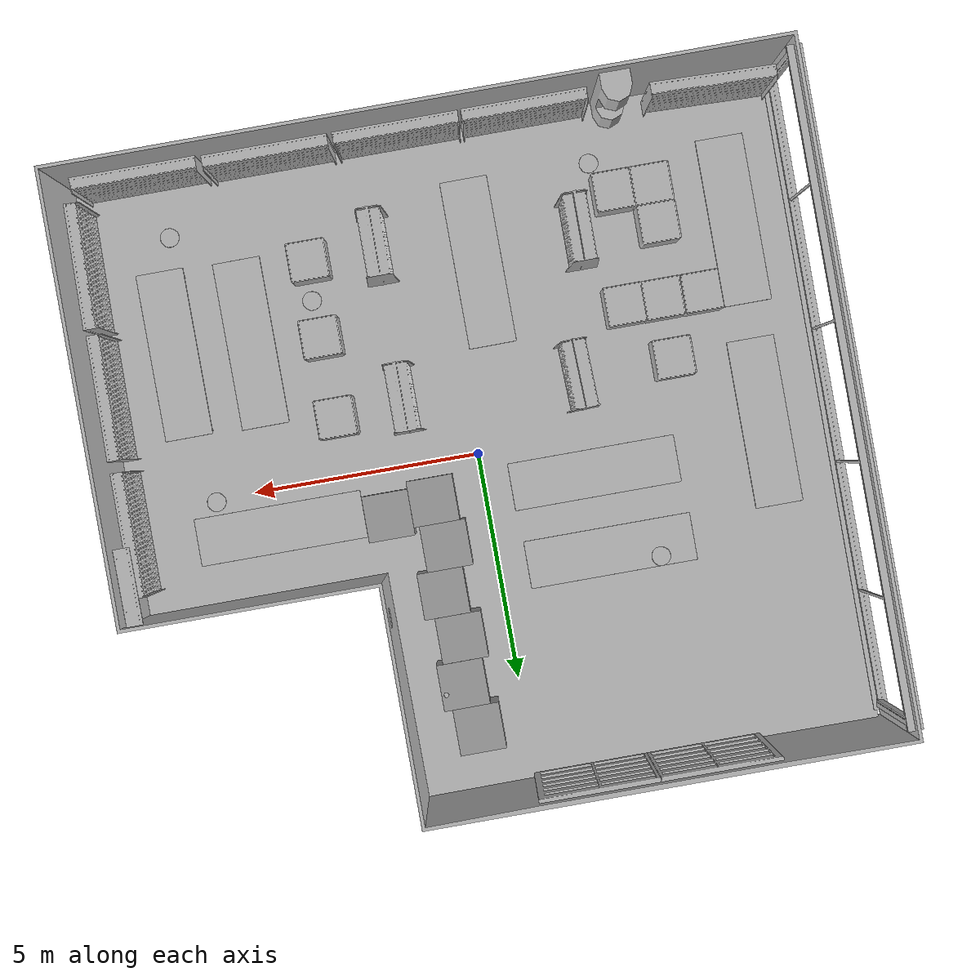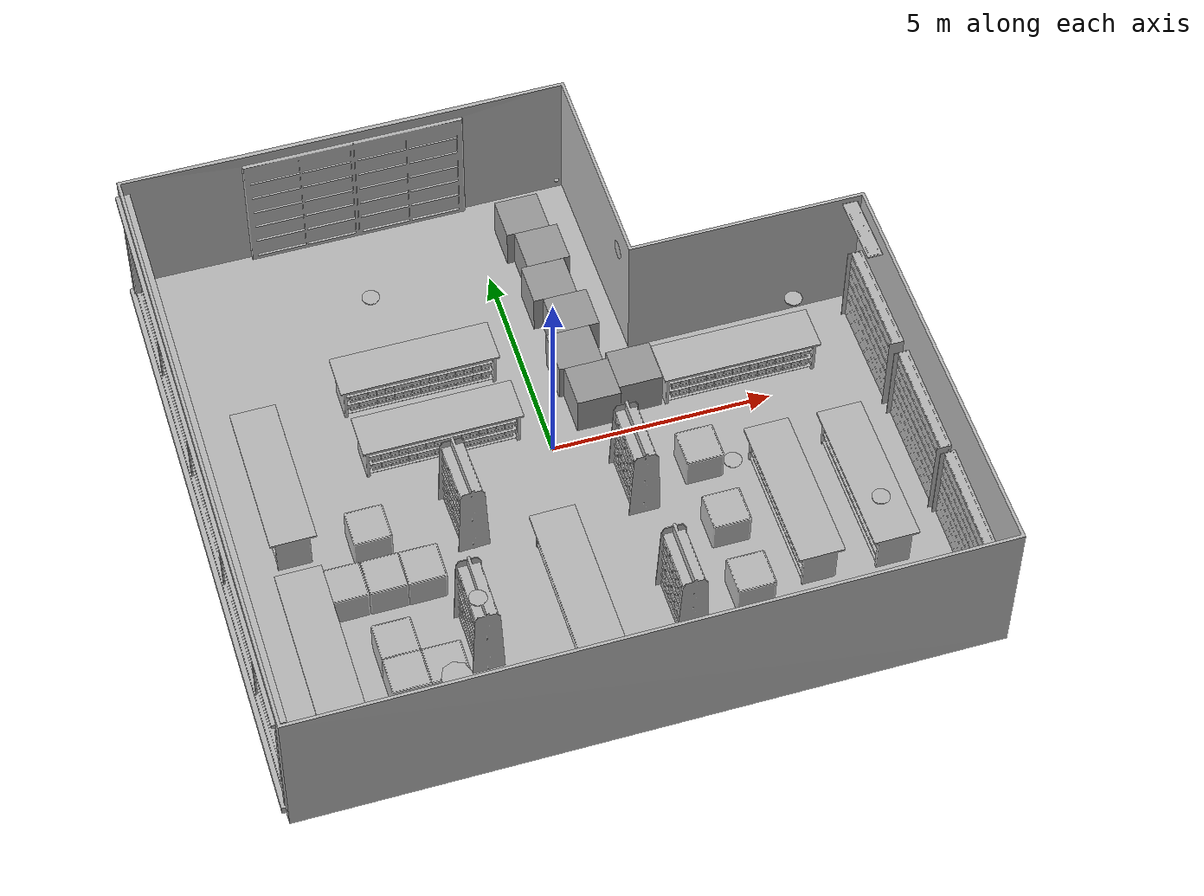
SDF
<sdf version="1.7">
 <world name="default">
  <gravity>0 0 -9.8</gravity>
  <magnetic_field>6e-06 2.3e-05 -4.2e-05</magnetic_field>
  <atmosphere type="adiabatic"/>
  <physics name="default_physics" default="0" type="ode">
   <max_step_size>0.001</max_step_size>
   <real_time_factor>1</real_time_factor>
   <real_time_update_rate>1000</real_time_update_rate>
  </physics>
  <scene>
   <ambient>0.4 0.4 0.4 1</ambient>
   <background>0.7 0.7 0.7 1</background>
   <shadows>1</shadows>
   <grid>0</grid>
   <origin_visual>0</origin_visual>
  </scene>
  <spherical_coordinates>
   <surface_model>EARTH_WGS84</surface_model>
   <latitude_deg>0</latitude_deg>
   <longitude_deg>0</longitude_deg>
   <elevation>0</elevation>
   <heading_deg>0</heading_deg>
  </spherical_coordinates>
  <model name="AirConditionerC_01_001">
   <link name="aws_robomaker_retail_AirConditionerC_01::link">
    <inertial><mass>50</mass></inertial>
    <collision name="collision">
     <geometry>
      <mesh>
       <uri>file://models/aws_robomaker_retail_AirConditionerC_01/meshes/aws_AirConditionerC_01_collision.DAE</uri>
       <scale>1 1 1</scale>
      </mesh>
     </geometry>
    </collision>
    <visual name="visual">
     <geometry>
      <mesh>
       <uri>file://models/aws_robomaker_retail_AirConditionerC_01/meshes/aws_AirConditionerC_01_visual.DAE</uri>
      </mesh>
     </geometry>
     <meta><layer>3</layer></meta>
    </visual>
   </link>
   <static>1</static>
   <pose>7.4582 1.42245 3.29094 0 0 -1.56422</pose>
  </model>
  <model name="BookshelfA_01_001">
   <link name="aws_robomaker_retail_BookshelfA_01::link">
    <inertial>
     <mass>50</mass>
     <inertia><ixx>27.7341</ixx><ixy>0</ixy><ixz>0</ixz><iyy>20.9361</iyy><iyz>0</iyz><izz>11.3596</izz></inertia>
    </inertial>
    <collision name="collision">
     <geometry>
      <mesh>
       <uri>file://models/aws_robomaker_retail_BookshelfA_01/meshes/aws_BookshelfA_01_collision.DAE</uri>
       <scale>1 1 1</scale>
      </mesh>
     </geometry>
    </collision>
    <visual name="visual">
     <geometry>
      <mesh><uri>file://models/aws_robomaker_retail_BookshelfA_01/meshes/aws_BookshelfA_01_visual.DAE</uri></mesh>
     </geometry>
     <meta><layer>1</layer></meta>
    </visual>
   </link>
   <static>1</static>
   <pose>1.40515 -1.44974 0.03755 0.00349 -3e-06 0.000696</pose>
  </model>
  <model name="BookshelfA_01_002">
   <link name="aws_robomaker_retail_BookshelfA_01::link">
    <inertial>
     <mass>50</mass>
     <inertia><ixx>27.7341</ixx><ixy>0</ixy><ixz>0</ixz><iyy>20.9361</iyy><iyz>0</iyz><izz>11.3596</izz></inertia>
    </inertial>
    <collision name="collision">
     <geometry>
      <mesh>
       <uri>file://models/aws_robomaker_retail_BookshelfA_01/meshes/aws_BookshelfA_01_collision.DAE</uri>
       <scale>1 1 1</scale>
      </mesh>
     </geometry>
    </collision>
    <visual name="visual">
     <geometry>
      <mesh><uri>file://models/aws_robomaker_retail_BookshelfA_01/meshes/aws_BookshelfA_01_visual.DAE</uri></mesh>
     </geometry>
     <meta><layer>1</layer></meta>
    </visual>
   </link>
   <static>1</static>
   <pose>1.40515 -4.76165 0.003411 0 -0 0</pose>
  </model>
  <model name="BookshelfA_01_003">
   <link name="aws_robomaker_retail_BookshelfA_01::link">
    <inertial>
     <mass>50</mass>
     <inertia><ixx>27.7341</ixx><ixy>0</ixy><ixz>0</ixz><iyy>20.9361</iyy><iyz>0</iyz><izz>11.3596</izz></inertia>
    </inertial>
    <collision name="collision">
     <geometry>
      <mesh>
       <uri>file://models/aws_robomaker_retail_BookshelfA_01/meshes/aws_BookshelfA_01_collision.DAE</uri>
       <scale>1 1 1</scale>
      </mesh>
     </geometry>
    </collision>
    <visual name="visual">
     <geometry>
      <mesh><uri>file://models/aws_robomaker_retail_BookshelfA_01/meshes/aws_BookshelfA_01_visual.DAE</uri></mesh>
     </geometry>
     <meta><layer>1</layer></meta>
    </visual>
   </link>
   <static>1</static>
   <pose>-2.39042 -1.27891 0.006337 0.001313 -0.001987 0.031824</pose>
  </model>
  <model name="BookshelfA_01_004">
   <link name="aws_robomaker_retail_BookshelfA_01::link">
    <inertial>
     <mass>50</mass>
     <inertia><ixx>27.7341</ixx><ixy>0</ixy><ixz>0</ixz><iyy>20.9361</iyy><iyz>0</iyz><izz>11.3596</izz></inertia>
    </inertial>
    <collision name="collision">
     <geometry>
      <mesh>
       <uri>file://models/aws_robomaker_retail_BookshelfA_01/meshes/aws_BookshelfA_01_collision.DAE</uri>
       <scale>1 1 1</scale>
      </mesh>
     </geometry>
    </collision>
    <visual name="visual">
     <geometry>
      <mesh><uri>file://models/aws_robomaker_retail_BookshelfA_01/meshes/aws_BookshelfA_01_visual.DAE</uri></mesh>
     </geometry>
     <meta><layer>1</layer></meta>
    </visual>
   </link>
   <static>1</static>
   <pose>-2.92417 -4.3226 0.003411 0 -0 0</pose>
  </model>
  <model name="BookshelfB_01_001">
   <link name="aws_robomaker_retail_BookshelfB_01::link">
    <inertial>
     <mass>50</mass>
     <inertia><ixx>19.8742</ixx><ixy>0</ixy><ixz>0</ixz><iyy>49.1263</iyy><iyz>0</iyz><izz>30.2231</izz></inertia>
    </inertial>
    <collision name="collision">
     <geometry>
      <mesh>
       <uri>file://models/aws_robomaker_retail_BookshelfB_01/meshes/aws_BookshelfB_01_collision.DAE</uri>
       <scale>1 1 1</scale>
      </mesh>
     </geometry>
    </collision>
    <visual name="visual">
     <geometry>
      <mesh><uri>file://models/aws_robomaker_retail_BookshelfB_01/meshes/aws_BookshelfB_01_visual.DAE</uri></mesh>
     </geometry>
     <meta><layer>1</layer></meta>
    </visual>
   </link>
   <static>1</static>
   <pose>-6.18968 -6.78565 -0.008942 0.003533 0.000121 -0.032073</pose>
  </model>
  <model name="BookshelfB_01_002">
   <link name="aws_robomaker_retail_BookshelfB_01::link">
    <inertial>
     <mass>50</mass>
     <inertia><ixx>19.8742</ixx><ixy>0</ixy><ixz>0</ixz><iyy>49.1263</iyy><iyz>0</iyz><izz>30.2231</izz></inertia>
    </inertial>
    <collision name="collision">
     <geometry>
      <mesh>
       <uri>file://models/aws_robomaker_retail_BookshelfB_01/meshes/aws_BookshelfB_01_collision.DAE</uri>
       <scale>1 1 1</scale>
      </mesh>
     </geometry>
    </collision>
    <visual name="visual">
     <geometry>
      <mesh><uri>file://models/aws_robomaker_retail_BookshelfB_01/meshes/aws_BookshelfB_01_visual.DAE</uri></mesh>
     </geometry>
     <meta><layer>1</layer></meta>
    </visual>
   </link>
   <static>1</static>
   <pose>-2.20941 -6.97146 0.017074 -0.000128 -0.000252 0.000364</pose>
  </model>
  <model name="BookshelfB_01_003">
   <link name="aws_robomaker_retail_BookshelfB_01::link">
    <inertial>
     <mass>50</mass>
     <inertia><ixx>19.8742</ixx><ixy>0</ixy><ixz>0</ixz><iyy>49.1263</iyy><iyz>0</iyz><izz>30.2231</izz></inertia>
    </inertial>
    <collision name="collision">
     <geometry>
      <mesh>
       <uri>file://models/aws_robomaker_retail_BookshelfB_01/meshes/aws_BookshelfB_01_collision.DAE</uri>
       <scale>1 1 1</scale>
      </mesh>
     </geometry>
    </collision>
    <visual name="visual">
     <geometry>
      <mesh><uri>file://models/aws_robomaker_retail_BookshelfB_01/meshes/aws_BookshelfB_01_visual.DAE</uri></mesh>
     </geometry>
     <meta><layer>1</layer></meta>
    </visual>
   </link>
   <static>1</static>
   <pose>0.522246 -6.9715 0.017947 -0.003292 0 0</pose>
  </model>
  <model name="BookshelfB_01_004">
   <link name="aws_robomaker_retail_BookshelfB_01::link">
    <inertial>
     <mass>50</mass>
     <inertia><ixx>19.8742</ixx><ixy>0</ixy><ixz>0</ixz><iyy>49.1263</iyy><iyz>0</iyz><izz>30.2231</izz></inertia>
    </inertial>
    <collision name="collision">
     <geometry>
      <mesh>
       <uri>file://models/aws_robomaker_retail_BookshelfB_01/meshes/aws_BookshelfB_01_collision.DAE</uri>
       <scale>1 1 1</scale>
      </mesh>
     </geometry>
    </collision>
    <visual name="visual">
     <geometry>
      <mesh><uri>file://models/aws_robomaker_retail_BookshelfB_01/meshes/aws_BookshelfB_01_visual.DAE</uri></mesh>
     </geometry>
     <meta><layer>1</layer></meta>
    </visual>
   </link>
   <static>1</static>
   <pose>3.29339 -6.96366 0.017383 8e-06 -2e-06 -0</pose>
  </model>
  <model name="BookshelfB_01_005">
   <link name="aws_robomaker_retail_BookshelfB_01::link">
    <inertial>
     <mass>50</mass>
     <inertia><ixx>19.8742</ixx><ixy>0</ixy><ixz>0</ixz><iyy>49.1263</iyy><iyz>0</iyz><izz>30.2231</izz></inertia>
    </inertial>
    <collision name="collision">
     <geometry>
      <mesh>
       <uri>file://models/aws_robomaker_retail_BookshelfB_01/meshes/aws_BookshelfB_01_collision.DAE</uri>
       <scale>1 1 1</scale>
      </mesh>
     </geometry>
    </collision>
    <visual name="visual">
     <geometry>
      <mesh><uri>file://models/aws_robomaker_retail_BookshelfB_01/meshes/aws_BookshelfB_01_visual.DAE</uri></mesh>
     </geometry>
     <meta><layer>1</layer></meta>
    </visual>
   </link>
   <static>1</static>
   <pose>6.08038 -6.98766 0.017409 0.000174 4e-06 0</pose>
  </model>
  <model name="BookshelfB_01_006">
   <link name="aws_robomaker_retail_BookshelfB_01::link">
    <inertial>
     <mass>50</mass>
     <inertia><ixx>19.8742</ixx><ixy>0</ixy><ixz>0</ixz><iyy>49.1263</iyy><iyz>0</iyz><izz>30.2231</izz></inertia>
    </inertial>
    <collision name="collision">
     <geometry>
      <mesh>
       <uri>file://models/aws_robomaker_retail_BookshelfB_01/meshes/aws_BookshelfB_01_collision.DAE</uri>
       <scale>1 1 1</scale>
      </mesh>
     </geometry>
    </collision>
    <visual name="visual">
     <geometry>
      <mesh><uri>file://models/aws_robomaker_retail_BookshelfB_01/meshes/aws_BookshelfB_01_visual.DAE</uri></mesh>
     </geometry>
     <meta><layer>1</layer></meta>
    </visual>
   </link>
   <static>1</static>
   <pose>7.47833 -5.2983 0.017443 -0.001974 -0.000211 1.55406</pose>
  </model>
  <model name="BookshelfB_01_007">
   <link name="aws_robomaker_retail_BookshelfB_01::link">
    <inertial>
     <mass>50</mass>
     <inertia><ixx>19.8742</ixx><ixy>0</ixy><ixz>0</ixz><iyy>49.1263</iyy><iyz>0</iyz><izz>30.2231</izz></inertia>
    </inertial>
    <collision name="collision">
     <geometry>
      <mesh>
       <uri>file://models/aws_robomaker_retail_BookshelfB_01/meshes/aws_BookshelfB_01_collision.DAE</uri>
       <scale>1 1 1</scale>
      </mesh>
     </geometry>
    </collision>
    <visual name="visual">
     <geometry>
      <mesh><uri>file://models/aws_robomaker_retail_BookshelfB_01/meshes/aws_BookshelfB_01_visual.DAE</uri></mesh>
     </geometry>
     <meta><layer>1</layer></meta>
    </visual>
   </link>
   <static>1</static>
   <pose>7.47833 -2.51065 0.017402 1e-05 -1.3e-05 1.56207</pose>
  </model>
  <model name="BookshelfB_01_008">
   <link name="aws_robomaker_retail_BookshelfB_01::link">
    <inertial>
     <mass>50</mass>
     <inertia><ixx>19.8742</ixx><ixy>0</ixy><ixz>0</ixz><iyy>49.1263</iyy><iyz>0</iyz><izz>30.2231</izz></inertia>
    </inertial>
    <collision name="collision">
     <geometry>
      <mesh>
       <uri>file://models/aws_robomaker_retail_BookshelfB_01/meshes/aws_BookshelfB_01_collision.DAE</uri>
       <scale>1 1 1</scale>
      </mesh>
     </geometry>
    </collision>
    <visual name="visual">
     <geometry>
      <mesh><uri>file://models/aws_robomaker_retail_BookshelfB_01/meshes/aws_BookshelfB_01_visual.DAE</uri></mesh>
     </geometry>
     <meta><layer>1</layer></meta>
    </visual>
   </link>
   <static>1</static>
   <pose>7.47833 0.402539 0.017181 3e-06 -0.000156 1.5708</pose>
  </model>
  <model name="BookshelfC_01_001">
   <link name="aws_robomaker_retail_BookshelfC_01::link">
    <inertial>
     <mass>50</mass>
     <inertia><ixx>5.5865</ixx><ixy>0</ixy><ixz>0</ixz><iyy>5.47324</iyy><iyz>0</iyz><izz>6.23277</izz></inertia>
    </inertial>
    <collision name="collision">
     <geometry>
      <mesh>
       <uri>file://models/aws_robomaker_retail_BookshelfC_01/meshes/aws_BookshelfC_01_collision.DAE</uri>
       <scale>1 1 1</scale>
      </mesh>
     </geometry>
    </collision>
    <visual name="visual">
     <geometry>
      <mesh><uri>file://models/aws_robomaker_retail_BookshelfC_01/meshes/aws_BookshelfC_01_visual.DAE</uri></mesh>
     </geometry>
     <meta><layer>1</layer></meta>
    </visual>
   </link>
   <static>1</static>
   <pose>2.91113 -1.31023 0.008469 0.003452 -3e-06 0.00062</pose>
  </model>
  <model name="BookshelfC_01_002">
   <link name="aws_robomaker_retail_BookshelfC_01::link">
    <inertial>
     <mass>50</mass>
     <inertia><ixx>5.5865</ixx><ixy>0</ixy><ixz>0</ixz><iyy>5.47324</iyy><iyz>0</iyz><izz>6.23277</izz></inertia>
    </inertial>
    <collision name="collision">
     <geometry>
      <mesh>
       <uri>file://models/aws_robomaker_retail_BookshelfC_01/meshes/aws_BookshelfC_01_collision.DAE</uri>
       <scale>1 1 1</scale>
      </mesh>
     </geometry>
    </collision>
    <visual name="visual">
     <geometry>
      <mesh><uri>file://models/aws_robomaker_retail_BookshelfC_01/meshes/aws_BookshelfC_01_visual.DAE</uri></mesh>
     </geometry>
     <meta><layer>1</layer></meta>
    </visual>
   </link>
   <static>1</static>
   <pose>2.91545 -4.76171 -0.003455 0.003452 -0 1.4e-05</pose>
  </model>
  <model name="BookshelfC_01_003">
   <link name="aws_robomaker_retail_BookshelfC_01::link">
    <inertial>
     <mass>50</mass>
     <inertia><ixx>5.5865</ixx><ixy>0</ixy><ixz>0</ixz><iyy>5.47324</iyy><iyz>0</iyz><izz>6.23277</izz></inertia>
    </inertial>
    <collision name="collision">
     <geometry>
      <mesh>
       <uri>file://models/aws_robomaker_retail_BookshelfC_01/meshes/aws_BookshelfC_01_collision.DAE</uri>
       <scale>1 1 1</scale>
      </mesh>
     </geometry>
    </collision>
    <visual name="visual">
     <geometry>
      <mesh><uri>file://models/aws_robomaker_retail_BookshelfC_01/meshes/aws_BookshelfC_01_visual.DAE</uri></mesh>
     </geometry>
     <meta><layer>1</layer></meta>
    </visual>
   </link>
   <static>1</static>
   <pose>-4.51711 -1.31023 0.045908 0 -0 0</pose>
  </model>
  <model name="BookshelfC_01_004">
   <link name="aws_robomaker_retail_BookshelfC_01::link">
    <inertial>
     <mass>50</mass>
     <inertia><ixx>5.5865</ixx><ixy>0</ixy><ixz>0</ixz><iyy>5.47324</iyy><iyz>0</iyz><izz>6.23277</izz></inertia>
    </inertial>
    <collision name="collision">
     <geometry>
      <mesh>
       <uri>file://models/aws_robomaker_retail_BookshelfC_01/meshes/aws_BookshelfC_01_collision.DAE</uri>
       <scale>1 1 1</scale>
      </mesh>
     </geometry>
    </collision>
    <visual name="visual">
     <geometry>
      <mesh><uri>file://models/aws_robomaker_retail_BookshelfC_01/meshes/aws_BookshelfC_01_visual.DAE</uri></mesh>
     </geometry>
     <meta><layer>1</layer></meta>
    </visual>
   </link>
   <static>1</static>
   <pose>-4.69738 -5.09708 0.045908 0 -0 0</pose>
  </model>
  <model name="ColumnB_01_002">
   <link name="aws_robomaker_retail_ColumnB_01::link">
    <inertial>
     <mass>50</mass>
     <inertia><ixx>44.5597</ixx><ixy>0</ixy><ixz>0</ixz><iyy>44.5597</iyy><iyz>0</iyz><izz>1.87942</izz></inertia>
    </inertial>
    <collision name="collision">
     <geometry>
      <mesh>
       <uri>file://models/aws_robomaker_retail_ColumnB_01/meshes/aws_ColumnB_01_collision.DAE</uri>
       <scale>1 1 1</scale>
      </mesh>
     </geometry>
    </collision>
    <visual name="visual">
     <geometry>
      <mesh><uri>file://models/aws_robomaker_retail_ColumnB_01/meshes/aws_ColumnB_01_visual.DAE</uri></mesh>
     </geometry>
     <meta><layer>1</layer></meta>
    </visual>
   </link>
   <static>1</static>
   <pose>-4.07623 -6.86071 0.017511 0.001895 -0.000628 -0.003755</pose>
  </model>
  <model name="DeskA_01_002">
   <link name="aws_robomaker_retail_DeskA_01::link">
    <inertial>
     <mass>20</mass>
     <inertia><ixx>3.49717</ixx><ixy>0</ixy><ixz>0</ixz><iyy>23.5599</iyy><iyz>0</iyz><izz>23.5702</izz></inertia>
    </inertial>
    <collision name="collision">
     <geometry>
      <mesh>
       <uri>file://models/aws_robomaker_retail_DeskA_01/meshes/aws_DeskA_01_collision.DAE</uri>
       <scale>1 1 1</scale>
      </mesh>
     </geometry>
    </collision>
    <visual name="visual">
     <geometry>
      <mesh><uri>file://models/aws_robomaker_retail_DeskA_01/meshes/aws_DeskA_01_visual.DAE</uri></mesh>
     </geometry>
     <meta><layer>1</layer></meta>
    </visual>
   </link>
   <static>1</static>
   <pose>-2.36994 0.836099 0.00876 -0.000772 -0.001938 1.7e-05</pose>
  </model>
  <model name="DeskA_01_003">
   <link name="aws_robomaker_retail_DeskA_01::link">
    <inertial>
     <mass>20</mass>
     <inertia><ixx>3.49717</ixx><ixy>0</ixy><ixz>0</ixz><iyy>23.5599</iyy><iyz>0</iyz><izz>23.5702</izz></inertia>
    </inertial>
    <collision name="collision">
     <geometry>
      <mesh>
       <uri>file://models/aws_robomaker_retail_DeskA_01/meshes/aws_DeskA_01_collision.DAE</uri>
       <scale>1 1 1</scale>
      </mesh>
     </geometry>
    </collision>
    <visual name="visual">
     <geometry>
      <mesh><uri>file://models/aws_robomaker_retail_DeskA_01/meshes/aws_DeskA_01_visual.DAE</uri></mesh>
     </geometry>
     <meta><layer>1</layer></meta>
    </visual>
   </link>
   <static>1</static>
   <pose>-6.25465 -3.9792 -0.004603 0.001948 0.001361 -1.56957</pose>
  </model>
  <model name="DeskA_01_004">
   <link name="aws_robomaker_retail_DeskA_01::link">
    <inertial>
     <mass>20</mass>
     <inertia><ixx>3.49717</ixx><ixy>0</ixy><ixz>0</ixz><iyy>23.5599</iyy><iyz>0</iyz><izz>23.5702</izz></inertia>
    </inertial>
    <collision name="collision">
     <geometry>
      <mesh>
       <uri>file://models/aws_robomaker_retail_DeskA_01/meshes/aws_DeskA_01_collision.DAE</uri>
       <scale>1 1 1</scale>
      </mesh>
     </geometry>
    </collision>
    <visual name="visual">
     <geometry>
      <mesh><uri>file://models/aws_robomaker_retail_DeskA_01/meshes/aws_DeskA_01_visual.DAE</uri></mesh>
     </geometry>
     <meta><layer>1</layer></meta>
    </visual>
   </link>
   <static>1</static>
   <pose>-0.701688 -4.04929 0.014866 0 0 -1.5661</pose>
  </model>
  <model name="DeskA_01_005">
   <link name="aws_robomaker_retail_DeskA_01::link">
    <inertial>
     <mass>20</mass>
     <inertia><ixx>3.49717</ixx><ixy>0</ixy><ixz>0</ixz><iyy>23.5599</iyy><iyz>0</iyz><izz>23.5702</izz></inertia>
    </inertial>
    <collision name="collision">
     <geometry>
      <mesh>
       <uri>file://models/aws_robomaker_retail_DeskA_01/meshes/aws_DeskA_01_collision.DAE</uri>
       <scale>1 1 1</scale>
      </mesh>
     </geometry>
    </collision>
    <visual name="visual">
     <geometry>
      <mesh><uri>file://models/aws_robomaker_retail_DeskA_01/meshes/aws_DeskA_01_visual.DAE</uri></mesh>
     </geometry>
     <meta><layer>1</layer></meta>
    </visual>
   </link>
   <static>1</static>
   <pose>4.4553 0.835772 0.014883 -2e-06 0.003451 2.4e-05</pose>
  </model>
  <model name="DoorB_01_001">
   <link name="aws_robomaker_retail_DoorB_01::link">
    <inertial>
     <mass>50</mass>
     <inertia><ixx>44.5597</ixx><ixy>0</ixy><ixz>0</ixz><iyy>151.699</iyy><iyz>0</iyz><izz>107.806</izz></inertia>
    </inertial>
    <collision name="collision">
     <geometry>
      <mesh>
       <uri>file://models/aws_robomaker_retail_DoorB_01/meshes/aws_DoorB_01_collision.DAE</uri>
       <scale>1 1 1</scale>
      </mesh>
     </geometry>
    </collision>
    <visual name="visual">
     <geometry>
      <mesh><uri>file://models/aws_robomaker_retail_DoorB_01/meshes/aws_DoorB_01_visual.DAE</uri></mesh>
     </geometry>
     <meta><layer>2</layer></meta>
    </visual>
   </link>
   <static>1</static>
   <pose>-2.49246 7.21937 -0.035203 0 -0 0</pose>
  </model>
  <model name="RetailShopFloor_01_001">
   <link name="aws_robomaker_retail_RetailShopFloor_01::link">
    <inertial><mass>100</mass></inertial>
    <collision name="collision">
     <geometry>
      <mesh>
       <uri>file://models/aws_robomaker_retail_RetailShopFloor_01/meshes/aws_RetailShopFloor_01_collision.DAE</uri>
       <scale>1 1 1</scale>
      </mesh>
     </geometry>
     <surface><friction><ode><mu>100</mu><mu2>50</mu2></ode></friction></surface>
    </collision>
    <visual name="visual">
     <geometry>
      <mesh>
       <uri>file://models/aws_robomaker_retail_RetailShopFloor_01/meshes/aws_RetailShopFloor_01_visual.DAE</uri>
      </mesh>
     </geometry>
     <meta><layer>1</layer></meta>
    </visual>
   </link>
   <static>1</static>
   <pose>0.098196 0.040108 -0.276618 0 -0 0</pose>
  </model>
  <model name="Horologe_01_001">
   <link name="aws_robomaker_retail_Horologe_01::link">
    <inertial><mass>1</mass></inertial>
    <collision name="collision">
     <geometry>
      <mesh>
       <uri>file://models/aws_robomaker_retail_Horologe_01/meshes/aws_Horologe_01_collision.DAE</uri>
       <scale>1 1 1</scale>
      </mesh>
     </geometry>
    </collision>
    <visual name="visual">
     <geometry>
      <mesh><uri>file://models/aws_robomaker_retail_Horologe_01/meshes/aws_Horologe_01_visual.DAE</uri></mesh>
     </geometry>
     <meta><layer>2</layer></meta>
    </visual>
   </link>
   <static>1</static>
   <pose>2.40512 3.02571 2.52519 0 0 -1.56558</pose>
  </model>
  <model name="RetailShopWall_01_001">
   <link name="aws_robomaker_retail_RetailShopWall_01::link">
    <inertial><mass>1</mass></inertial>
    <collision name="collision">
     <geometry>
      <mesh>
       <uri>file://models/aws_robomaker_retail_RetailShopWall_01/meshes/aws_RetailShopWall_01_collision.DAE</uri>
       <scale>1 1 1</scale>
      </mesh>
     </geometry>
    </collision>
    <visual name="visual">
     <geometry>
      <mesh>
       <uri>file://models/aws_robomaker_retail_RetailShopWall_01/meshes/aws_RetailShopWall_01_visual.DAE</uri>
      </mesh>
     </geometry>
     <meta><layer>2</layer></meta>
    </visual>
   </link>
   <static>1</static>
   <pose>0 0 -0.281282 0 -0 0</pose>
  </model>
  <model name="LightA_01_001">
   <link name="aws_robomaker_retail_LightA_01::link">
    <inertial><mass>1</mass></inertial>
    <collision name="collision">
     <geometry>
      <mesh>
       <uri>file://models/aws_robomaker_retail_LightA_01/meshes/aws_LightA_01_collision.DAE</uri>
       <scale>1 1 1</scale>
      </mesh>
     </geometry>
    </collision>
    <visual name="visual">
     <geometry>
      <mesh><uri>file://models/aws_robomaker_retail_LightA_01/meshes/aws_LightA_01_visual.DAE</uri></mesh>
     </geometry>
     <meta><layer>3</layer></meta>
    </visual>
   </link>
   <static>1</static>
   <pose>2.77442 -3.62815 3.15033 0 -0 0</pose>
  </model>
  <model name="LightA_01_002">
   <link name="aws_robomaker_retail_LightA_01::link">
    <inertial><mass>1</mass></inertial>
    <collision name="collision">
     <geometry>
      <mesh>
       <uri>file://models/aws_robomaker_retail_LightA_01/meshes/aws_LightA_01_collision.DAE</uri>
       <scale>1 1 1</scale>
      </mesh>
     </geometry>
    </collision>
    <visual name="visual">
     <geometry>
      <mesh><uri>file://models/aws_robomaker_retail_LightA_01/meshes/aws_LightA_01_visual.DAE</uri></mesh>
     </geometry>
     <meta><layer>3</layer></meta>
    </visual>
   </link>
   <static>1</static>
   <pose>5.38399 -5.38371 3.15033 0 -0 0</pose>
  </model>
  <model name="LightA_01_003">
   <link name="aws_robomaker_retail_LightA_01::link">
    <inertial><mass>1</mass></inertial>
    <collision name="collision">
     <geometry>
      <mesh>
       <uri>file://models/aws_robomaker_retail_LightA_01/meshes/aws_LightA_01_collision.DAE</uri>
       <scale>1 1 1</scale>
      </mesh>
     </geometry>
    </collision>
    <visual name="visual">
     <geometry>
      <mesh><uri>file://models/aws_robomaker_retail_LightA_01/meshes/aws_LightA_01_visual.DAE</uri></mesh>
     </geometry>
     <meta><layer>3</layer></meta>
    </visual>
   </link>
   <static>1</static>
   <pose>5.38399 0.04192 3.15033 0 -0 0</pose>
  </model>
  <model name="LightA_01_004">
   <link name="aws_robomaker_retail_LightA_01::link">
    <inertial><mass>1</mass></inertial>
    <collision name="collision">
     <geometry>
      <mesh>
       <uri>file://models/aws_robomaker_retail_LightA_01/meshes/aws_LightA_01_collision.DAE</uri>
       <scale>1 1 1</scale>
      </mesh>
     </geometry>
    </collision>
    <visual name="visual">
     <geometry>
      <mesh><uri>file://models/aws_robomaker_retail_LightA_01/meshes/aws_LightA_01_visual.DAE</uri></mesh>
     </geometry>
     <meta><layer>3</layer></meta>
    </visual>
   </link>
   <static>1</static>
   <pose>-3.21067 -5.38371 3.15033 0 -0 0</pose>
  </model>
  <model name="LightA_01_005">
   <link name="aws_robomaker_retail_LightA_01::link">
    <inertial><mass>1</mass></inertial>
    <collision name="collision">
     <geometry>
      <mesh>
       <uri>file://models/aws_robomaker_retail_LightA_01/meshes/aws_LightA_01_collision.DAE</uri>
       <scale>1 1 1</scale>
      </mesh>
     </geometry>
    </collision>
    <visual name="visual">
     <geometry>
      <mesh><uri>file://models/aws_robomaker_retail_LightA_01/meshes/aws_LightA_01_visual.DAE</uri></mesh>
     </geometry>
     <meta><layer>3</layer></meta>
    </visual>
   </link>
   <static>1</static>
   <pose>-3.271 2.68593 3.15033 0 -0 0</pose>
  </model>
  <model name="Spotlight_01_001">
   <link name="aws_robomaker_retail_Spotlight_01::link">
    <inertial><mass>1</mass></inertial>
    <collision name="collision">
     <geometry>
      <mesh>
       <uri>file://models/aws_robomaker_retail_Spotlight_01/meshes/aws_Spotlight_01_collision.DAE</uri>
       <scale>1 1 1</scale>
      </mesh>
     </geometry>
    </collision>
    <visual name="visual">
     <geometry>
      <mesh><uri>file://models/aws_robomaker_retail_Spotlight_01/meshes/aws_Spotlight_01_visual.DAE</uri></mesh>
     </geometry>
     <meta><layer>3</layer></meta>
    </visual>
   </link>
   <static>1</static>
   <pose>1.4932 4.69237 3.30266 0 -0 0</pose>
  </model>
  <model name="ShopWindow_01_001">
   <link name="aws_robomaker_retail_ShopWindow_01::link">
    <inertial><mass>1</mass></inertial>
    <collision name="collision">
     <geometry>
      <mesh>
       <uri>file://models/aws_robomaker_retail_ShopWindow_01/meshes/aws_ShopWindow_01_collision.DAE</uri>
       <scale>1 1 1</scale>
      </mesh>
     </geometry>
    </collision>
    <visual name="visual">
     <geometry>
      <mesh><uri>file://models/aws_robomaker_retail_ShopWindow_01/meshes/aws_ShopWindow_01_visual.DAE</uri></mesh>
     </geometry>
    </visual>
   </link>
   <static>1</static>
   <pose>-7.73816 0.01596 -0.180092 0 -0 0</pose>
  </model>
  <light name="RetailShop_CeilingLight_001" type="point">
   <pose>2.77442 -3.62815 3.17847 0 -0 0</pose>
   <diffuse>0.2 0.2 0.2 1</diffuse>
   <specular>0.1 0.1 0.1 1</specular>
   <attenuation>
    <range>20</range>
    <constant>0.32</constant>
    <linear>0.01</linear>
    <quadratic>0.03</quadratic>
   </attenuation>
   <cast_shadows>0</cast_shadows>
   <direction>0 0 -1</direction>
   <spot><inner_angle>0</inner_angle><outer_angle>0</outer_angle><falloff>0</falloff></spot>
  </light>
  <light name="RetailShop_CeilingLight_002" type="point">
   <pose>5.38399 -5.38371 3.17847 0 -0 0</pose>
   <diffuse>0.2 0.2 0.2 1</diffuse>
   <specular>0.1 0.1 0.1 1</specular>
   <attenuation>
    <range>20</range>
    <constant>0.32</constant>
    <linear>0.01</linear>
    <quadratic>0.03</quadratic>
   </attenuation>
   <cast_shadows>0</cast_shadows>
   <direction>0 0 -1</direction>
   <spot><inner_angle>0</inner_angle><outer_angle>0</outer_angle><falloff>0</falloff></spot>
  </light>
  <light name="RetailShop_CeilingLight_003" type="point">
   <pose>5.38399 0.04192 3.17847 0 -0 0</pose>
   <diffuse>0.2 0.2 0.2 1</diffuse>
   <specular>0.1 0.1 0.1 1</specular>
   <attenuation>
    <range>20</range>
    <constant>0.32</constant>
    <linear>0.01</linear>
    <quadratic>0.03</quadratic>
   </attenuation>
   <cast_shadows>0</cast_shadows>
   <direction>0 0 -1</direction>
   <spot><inner_angle>0</inner_angle><outer_angle>0</outer_angle><falloff>0</falloff></spot>
  </light>
  <light name="RetailShop_CeilingLight_004" type="point">
   <pose>-3.21067 -5.38371 3.17847 0 -0 0</pose>
   <diffuse>0.2 0.2 0.2 1</diffuse>
   <specular>0.1 0.1 0.1 1</specular>
   <attenuation>
    <range>20</range>
    <constant>0.32</constant>
    <linear>0.01</linear>
    <quadratic>0.03</quadratic>
   </attenuation>
   <cast_shadows>0</cast_shadows>
   <direction>0 0 -1</direction>
   <spot><inner_angle>0</inner_angle><outer_angle>0</outer_angle><falloff>0</falloff></spot>
  </light>
  <light name="RetailShop_CeilingLight_005" type="point">
   <pose>-3.271 2.68593 3.17847 0 -0 0</pose>
   <diffuse>0.2 0.2 0.2 1</diffuse>
   <specular>0.1 0.1 0.1 1</specular>
   <attenuation>
    <range>20</range>
    <constant>0.32</constant>
    <linear>0.01</linear>
    <quadratic>0.03</quadratic>
   </attenuation>
   <cast_shadows>0</cast_shadows>
   <direction>0 0 -1</direction>
   <spot><inner_angle>0</inner_angle><outer_angle>0</outer_angle><falloff>0</falloff></spot>
  </light>
  <light name="RetailShop_CeilingLight_006" type="point">
   <pose>1.4932 4.69237 3.17847 0 -0 0</pose>
   <diffuse>0.2 0.2 0.2 1</diffuse>
   <specular>0.1 0.1 0.1 1</specular>
   <attenuation>
    <range>20</range>
    <constant>0.32</constant>
    <linear>0.01</linear>
    <quadratic>0.03</quadratic>
   </attenuation>
   <cast_shadows>0</cast_shadows>
   <direction>0 0 -1</direction>
   <spot><inner_angle>0</inner_angle><outer_angle>0</outer_angle><falloff>0</falloff></spot>
  </light>
  <audio><device>default</device></audio>
  <light name="user_directional_light_0" type="directional">
   <pose>1.49712 -12.0596 1 0 -0 0</pose>
   <diffuse>0.5 0.5 0.5 1</diffuse>
   <specular>0.1 0.1 0.1 1</specular>
   <direction>0.1 0.1 -0.9</direction>
   <attenuation>
    <range>20</range>
    <constant>0.5</constant>
    <linear>0.01</linear>
    <quadratic>0.001</quadratic>
   </attenuation>
   <spot><inner_angle>0</inner_angle><outer_angle>0</outer_angle><falloff>0</falloff></spot>
  </light>
  <model name="unit_box_1">
   <pose>2.14956 0.979146 0.513382 -0 -0 -0.000227</pose>
   <link name="link">
    <inertial>
     <mass>1</mass>
     <inertia>
      <ixx>0.166667</ixx>
      <ixy>0</ixy>
      <ixz>0</ixz>
      <iyy>0.166667</iyy>
      <iyz>0</iyz>
      <izz>0.166667</izz>
     </inertia>
    </inertial>
    <collision name="collision"><geometry><box><size>1 1 1</size></box></geometry></collision>
    <visual name="visual">
     <geometry><box><size>1 1 1</size></box></geometry>
     <material>
      <script><name>Gazebo/Grey</name><uri>file://media/materials/scripts/gazebo.material</uri></script>
     </material>
    </visual>
   </link>
  </model>
  <model name="unit_box_2">
   <pose>1.14889 0.822715 0.513382 0 -0 0.000333</pose>
   <link name="link">
    <inertial>
     <mass>1</mass>
     <inertia>
      <ixx>0.166667</ixx>
      <ixy>0</ixy>
      <ixz>0</ixz>
      <iyy>0.166667</iyy>
      <iyz>0</iyz>
      <izz>0.166667</izz>
     </inertia>
    </inertial>
    <collision name="collision"><geometry><box><size>1 1 1</size></box></geometry></collision>
    <visual name="visual">
     <geometry><box><size>1 1 1</size></box></geometry>
     <material>
      <script><name>Gazebo/Grey</name><uri>file://media/materials/scripts/gazebo.material</uri></script>
     </material>
    </visual>
   </link>
  </model>
  <model name="unit_box_3">
   <pose>1.03503 1.82271 0.513382 0 -0 0.000363</pose>
   <link name="link">
    <inertial>
     <mass>1</mass>
     <inertia>
      <ixx>0.166667</ixx>
      <ixy>0</ixy>
      <ixz>0</ixz>
      <iyy>0.166667</iyy>
      <iyz>0</iyz>
      <izz>0.166667</izz>
     </inertia>
    </inertial>
    <collision name="collision"><geometry><box><size>1 1 1</size></box></geometry></collision>
    <visual name="visual">
     <geometry><box><size>1 1 1</size></box></geometry>
     <material>
      <script><name>Gazebo/Grey</name><uri>file://media/materials/scripts/gazebo.material</uri></script>
     </material>
    </visual>
   </link>
  </model>
  <model name="unit_box_4">
   <pose>1.26839 2.8228 0.513382 0 -0 0.000368</pose>
   <link name="link">
    <inertial>
     <mass>1</mass>
     <inertia>
      <ixx>0.166667</ixx>
      <ixy>0</ixy>
      <ixz>0</ixz>
      <iyy>0.166667</iyy>
      <iyz>0</iyz>
      <izz>0.166667</izz>
     </inertia>
    </inertial>
    <collision name="collision"><geometry><box><size>1 1 1</size></box></geometry></collision>
    <visual name="visual">
     <geometry><box><size>1 1 1</size></box></geometry>
     <material>
      <script><name>Gazebo/Grey</name><uri>file://media/materials/scripts/gazebo.material</uri></script>
     </material>
    </visual>
   </link>
  </model>
  <model name="unit_box_5">
   <pose>1.05148 3.8231 0.513382 0 -0 0.001692</pose>
   <link name="link">
    <inertial>
     <mass>1</mass>
     <inertia>
      <ixx>0.166667</ixx>
      <ixy>0</ixy>
      <ixz>0</ixz>
      <iyy>0.166667</iyy>
      <iyz>0</iyz>
      <izz>0.166667</izz>
     </inertia>
    </inertial>
    <collision name="collision"><geometry><box><size>1 1 1</size></box></geometry></collision>
    <visual name="visual">
     <geometry><box><size>1 1 1</size></box></geometry>
     <material>
      <script><name>Gazebo/Grey</name><uri>file://media/materials/scripts/gazebo.material</uri></script>
     </material>
    </visual>
   </link>
  </model>
  <model name="unit_box_6">
   <pose>1.19512 4.82467 0.513382 0 -0 0.0043</pose>
   <link name="link">
    <inertial>
     <mass>1</mass>
     <inertia>
      <ixx>0.166667</ixx>
      <ixy>0</ixy>
      <ixz>0</ixz>
      <iyy>0.166667</iyy>
      <iyz>0</iyz>
      <izz>0.166667</izz>
     </inertia>
    </inertial>
    <collision name="collision"><geometry><box><size>1 1 1</size></box></geometry></collision>
    <visual name="visual">
     <geometry><box><size>1 1 1</size></box></geometry>
     <material>
      <script><name>Gazebo/Grey</name><uri>file://media/materials/scripts/gazebo.material</uri></script>
     </material>
    </visual>
   </link>
  </model>
  <model name="unit_box_7">
   <pose>1.01489 5.82404 0.513382 0 -0 0.004346</pose>
   <link name="link">
    <inertial>
     <mass>1</mass>
     <inertia>
      <ixx>0.166667</ixx>
      <ixy>0</ixy>
      <ixz>0</ixz>
      <iyy>0.166667</iyy>
      <iyz>0</iyz>
      <izz>0.166667</izz>
     </inertia>
    </inertial>
    <collision name="collision"><geometry><box><size>1 1 1</size></box></geometry></collision>
    <visual name="visual">
     <geometry><box><size>1 1 1</size></box></geometry>
     <material>
      <script><name>Gazebo/Grey</name><uri>file://media/materials/scripts/gazebo.material</uri></script>
     </material>
    </visual>
   </link>
  </model>
  <model name="BookshelfC_01_004_clone">
   <link name="aws_robomaker_retail_BookshelfC_01::link">
    <inertial>
     <mass>50</mass>
     <inertia><ixx>5.5865</ixx><ixy>0</ixy><ixz>0</ixz><iyy>5.47324</iyy><iyz>0</iyz><izz>6.23277</izz></inertia>
    </inertial>
    <collision name="collision">
     <geometry>
      <mesh>
       <uri>file://models/aws_robomaker_retail_BookshelfC_01/meshes/aws_BookshelfC_01_collision.DAE</uri>
       <scale>1 1 1</scale>
      </mesh>
     </geometry>
    </collision>
    <visual name="visual">
     <geometry>
      <mesh><uri>file://models/aws_robomaker_retail_BookshelfC_01/meshes/aws_BookshelfC_01_visual.DAE</uri></mesh>
     </geometry>
     <meta><layer>1</layer></meta>
    </visual>
   </link>
   <static>1</static>
   <pose>-4.70305 -4.24272 0.045908 0 -0 0</pose>
  </model>
  <model name="BookshelfC_01_004_clone_clone">
   <link name="aws_robomaker_retail_BookshelfC_01::link">
    <inertial>
     <mass>50</mass>
     <inertia><ixx>5.5865</ixx><ixy>0</ixy><ixz>0</ixz><iyy>5.47324</iyy><iyz>0</iyz><izz>6.23277</izz></inertia>
    </inertial>
    <collision name="collision">
     <geometry>
      <mesh>
       <uri>file://models/aws_robomaker_retail_BookshelfC_01/meshes/aws_BookshelfC_01_collision.DAE</uri>
       <scale>1 1 1</scale>
      </mesh>
     </geometry>
    </collision>
    <visual name="visual">
     <geometry>
      <mesh><uri>file://models/aws_robomaker_retail_BookshelfC_01/meshes/aws_BookshelfC_01_visual.DAE</uri></mesh>
     </geometry>
     <meta><layer>1</layer></meta>
    </visual>
   </link>
   <static>1</static>
   <pose>-5.36777 -2.61163 0.045908 0 -0 0</pose>
  </model>
  <model name="BookshelfC_01_004_clone_clone_0">
   <link name="aws_robomaker_retail_BookshelfC_01::link">
    <inertial>
     <mass>50</mass>
     <inertia><ixx>5.5865</ixx><ixy>0</ixy><ixz>0</ixz><iyy>5.47324</iyy><iyz>0</iyz><izz>6.23277</izz></inertia>
    </inertial>
    <collision name="collision">
     <geometry>
      <mesh>
       <uri>file://models/aws_robomaker_retail_BookshelfC_01/meshes/aws_BookshelfC_01_collision.DAE</uri>
       <scale>1 1 1</scale>
      </mesh>
     </geometry>
    </collision>
    <visual name="visual">
     <geometry>
      <mesh><uri>file://models/aws_robomaker_retail_BookshelfC_01/meshes/aws_BookshelfC_01_visual.DAE</uri></mesh>
     </geometry>
     <meta><layer>1</layer></meta>
    </visual>
   </link>
   <static>1</static>
   <pose>-4.51023 -2.61355 0.045908 0 -0 0</pose>
  </model>
  <model name="BookshelfC_01_004_clone_clone_1">
   <link name="aws_robomaker_retail_BookshelfC_01::link">
    <inertial>
     <mass>50</mass>
     <inertia><ixx>5.5865</ixx><ixy>0</ixy><ixz>0</ixz><iyy>5.47324</iyy><iyz>0</iyz><izz>6.23277</izz></inertia>
    </inertial>
    <collision name="collision">
     <geometry>
      <mesh>
       <uri>file://models/aws_robomaker_retail_BookshelfC_01/meshes/aws_BookshelfC_01_collision.DAE</uri>
       <scale>1 1 1</scale>
      </mesh>
     </geometry>
    </collision>
    <visual name="visual">
     <geometry>
      <mesh><uri>file://models/aws_robomaker_retail_BookshelfC_01/meshes/aws_BookshelfC_01_visual.DAE</uri></mesh>
     </geometry>
     <meta><layer>1</layer></meta>
    </visual>
   </link>
   <static>1</static>
   <pose>-3.67338 -2.61887 0.045908 0 -0 0</pose>
  </model>
  <model name="DeskA_01_003_clone">
   <link name="aws_robomaker_retail_DeskA_01::link">
    <inertial>
     <mass>20</mass>
     <inertia><ixx>3.49717</ixx><ixy>0</ixy><ixz>0</ixz><iyy>23.5599</iyy><iyz>0</iyz><izz>23.5702</izz></inertia>
    </inertial>
    <collision name="collision">
     <geometry>
      <mesh>
       <uri>file://models/aws_robomaker_retail_DeskA_01/meshes/aws_DeskA_01_collision.DAE</uri>
       <scale>1 1 1</scale>
      </mesh>
     </geometry>
    </collision>
    <visual name="visual">
     <geometry>
      <mesh><uri>file://models/aws_robomaker_retail_DeskA_01/meshes/aws_DeskA_01_visual.DAE</uri></mesh>
     </geometry>
     <meta><layer>1</layer></meta>
    </visual>
   </link>
   <static>1</static>
   <pose>-6.16308 0.394366 -0.004603 0.001948 0.001361 -1.56957</pose>
  </model>
  <model name="DeskA_01_002_clone">
   <link name="aws_robomaker_retail_DeskA_01::link">
    <inertial>
     <mass>20</mass>
     <inertia><ixx>3.49717</ixx><ixy>0</ixy><ixz>0</ixz><iyy>23.5599</iyy><iyz>0</iyz><izz>23.5702</izz></inertia>
    </inertial>
    <collision name="collision">
     <geometry>
      <mesh>
       <uri>file://models/aws_robomaker_retail_DeskA_01/meshes/aws_DeskA_01_collision.DAE</uri>
       <scale>1 1 1</scale>
      </mesh>
     </geometry>
    </collision>
    <visual name="visual">
     <geometry>
      <mesh><uri>file://models/aws_robomaker_retail_DeskA_01/meshes/aws_DeskA_01_visual.DAE</uri></mesh>
     </geometry>
     <meta><layer>1</layer></meta>
    </visual>
   </link>
   <static>1</static>
   <pose>-2.41842 2.54055 0.00876 -0.000772 -0.001938 1.7e-05</pose>
  </model>
  <model name="DeskA_01_004_clone">
   <link name="aws_robomaker_retail_DeskA_01::link">
    <inertial>
     <mass>20</mass>
     <inertia><ixx>3.49717</ixx><ixy>0</ixy><ixz>0</ixz><iyy>23.5599</iyy><iyz>0</iyz><izz>23.5702</izz></inertia>
    </inertial>
    <collision name="collision">
     <geometry>
      <mesh>
       <uri>file://models/aws_robomaker_retail_DeskA_01/meshes/aws_DeskA_01_collision.DAE</uri>
       <scale>1 1 1</scale>
      </mesh>
     </geometry>
    </collision>
    <visual name="visual">
     <geometry>
      <mesh><uri>file://models/aws_robomaker_retail_DeskA_01/meshes/aws_DeskA_01_visual.DAE</uri></mesh>
     </geometry>
     <meta><layer>1</layer></meta>
    </visual>
   </link>
   <static>1</static>
   <pose>4.40146 -3.1869 0.014866 0 0 -1.5661</pose>
  </model>
  <model name="DeskA_01_004_clone_0">
   <link name="aws_robomaker_retail_DeskA_01::link">
    <inertial>
     <mass>20</mass>
     <inertia><ixx>3.49717</ixx><ixy>0</ixy><ixz>0</ixz><iyy>23.5599</iyy><iyz>0</iyz><izz>23.5702</izz></inertia>
    </inertial>
    <collision name="collision">
     <geometry>
      <mesh>
       <uri>file://models/aws_robomaker_retail_DeskA_01/meshes/aws_DeskA_01_collision.DAE</uri>
       <scale>1 1 1</scale>
      </mesh>
     </geometry>
    </collision>
    <visual name="visual">
     <geometry>
      <mesh><uri>file://models/aws_robomaker_retail_DeskA_01/meshes/aws_DeskA_01_visual.DAE</uri></mesh>
     </geometry>
     <meta><layer>1</layer></meta>
    </visual>
   </link>
   <static>1</static>
   <pose>6.0615 -3.23014 0.014866 0 0 -1.5661</pose>
  </model>
  <model name="BookshelfC_01_001_clone">
   <link name="aws_robomaker_retail_BookshelfC_01::link">
    <inertial>
     <mass>50</mass>
     <inertia><ixx>5.5865</ixx><ixy>0</ixy><ixz>0</ixz><iyy>5.47324</iyy><iyz>0</iyz><izz>6.23277</izz></inertia>
    </inertial>
    <collision name="collision">
     <geometry>
      <mesh>
       <uri>file://models/aws_robomaker_retail_BookshelfC_01/meshes/aws_BookshelfC_01_collision.DAE</uri>
       <scale>1 1 1</scale>
      </mesh>
     </geometry>
    </collision>
    <visual name="visual">
     <geometry>
      <mesh><uri>file://models/aws_robomaker_retail_BookshelfC_01/meshes/aws_BookshelfC_01_visual.DAE</uri></mesh>
     </geometry>
     <meta><layer>1</layer></meta>
    </visual>
   </link>
   <static>1</static>
   <pose>2.93416 -3.07224 0.008469 0.003452 -3e-06 0.00062</pose>
  </model>
  <model name="BookshelfC_01_004_clone_0">
   <link name="aws_robomaker_retail_BookshelfC_01::link">
    <inertial>
     <mass>50</mass>
     <inertia><ixx>5.5865</ixx><ixy>0</ixy><ixz>0</ixz><iyy>5.47324</iyy><iyz>0</iyz><izz>6.23277</izz></inertia>
    </inertial>
    <collision name="collision">
     <geometry>
      <mesh>
       <uri>file://models/aws_robomaker_retail_BookshelfC_01/meshes/aws_BookshelfC_01_collision.DAE</uri>
       <scale>1 1 1</scale>
      </mesh>
     </geometry>
    </collision>
    <visual name="visual">
     <geometry>
      <mesh><uri>file://models/aws_robomaker_retail_BookshelfC_01/meshes/aws_BookshelfC_01_visual.DAE</uri></mesh>
     </geometry>
     <meta><layer>1</layer></meta>
    </visual>
   </link>
   <static>1</static>
   <pose>-3.85444 -5.09852 0.045908 0 -0 0</pose>
  </model>
 </world>
</sdf>
